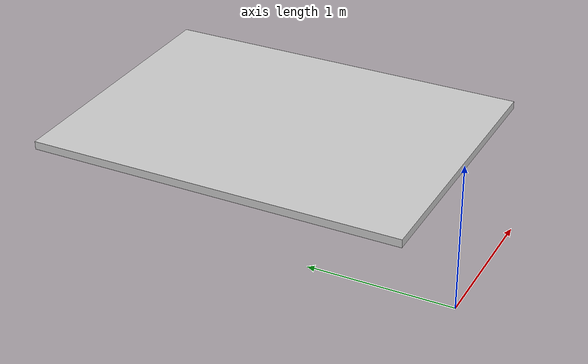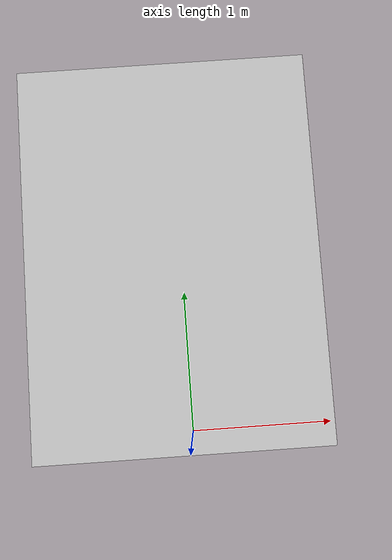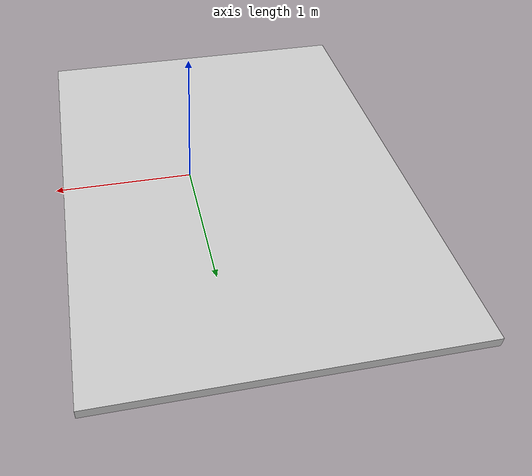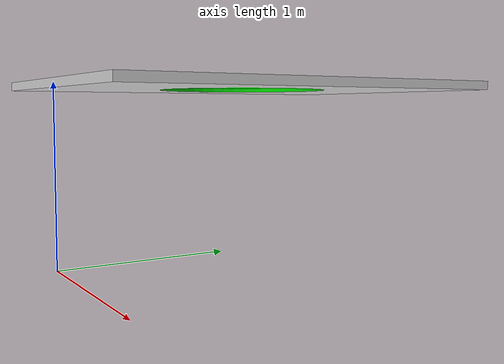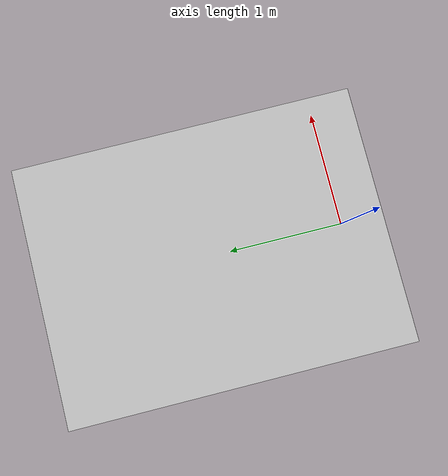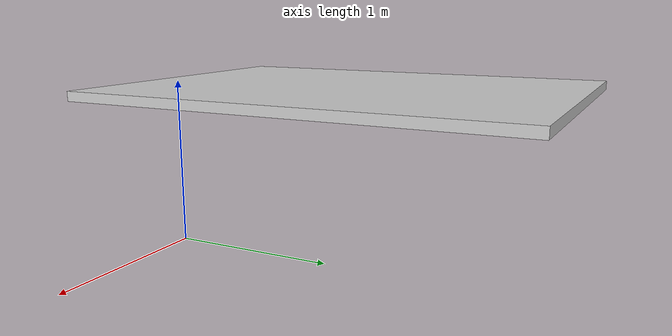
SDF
<?xml version="1.0"?>
<sdf version="1.5">
  <model name="green_circle">
    <static>true</static>
    <pose>0 0 1 -1.5707 0 0</pose>
    <link name="base_link">
      <visual name="visual">
        <geometry>
           <mesh>
            <uri>file://symbols/green_circle.dae</uri>
          </mesh>
        </geometry>
      </visual>
      <collision name="collision">
        <geometry>
           <mesh>
            <uri>file://symbols/green_circle.dae</uri>
          </mesh>
        </geometry>
      </collision>
    </link>
  </model>
</sdf>
